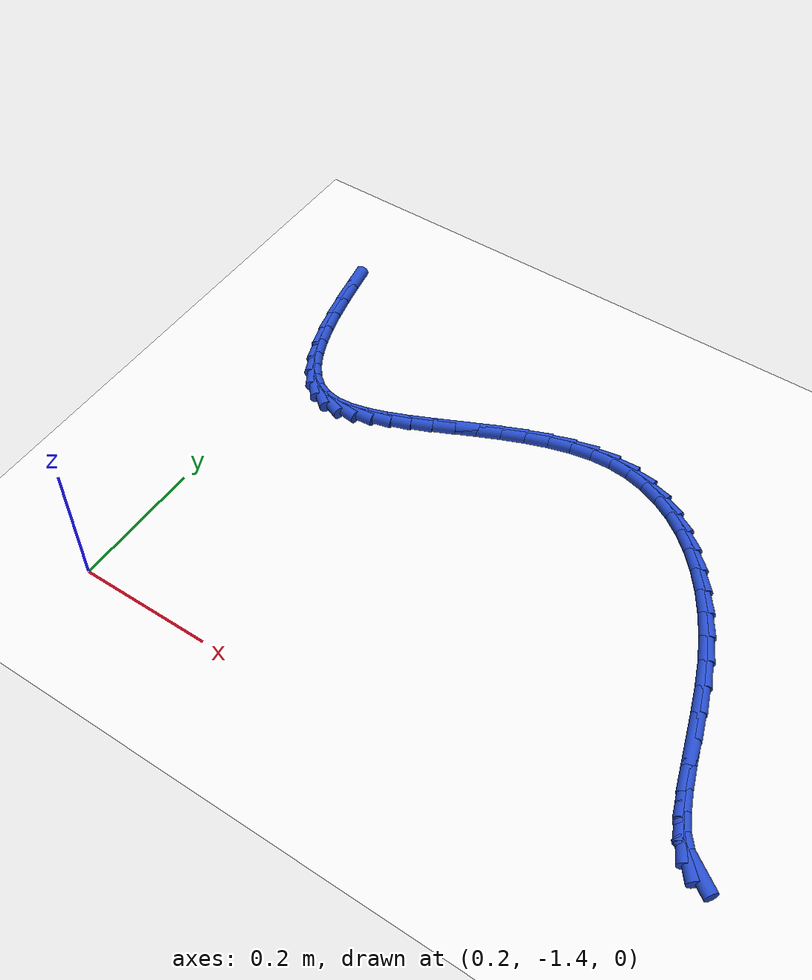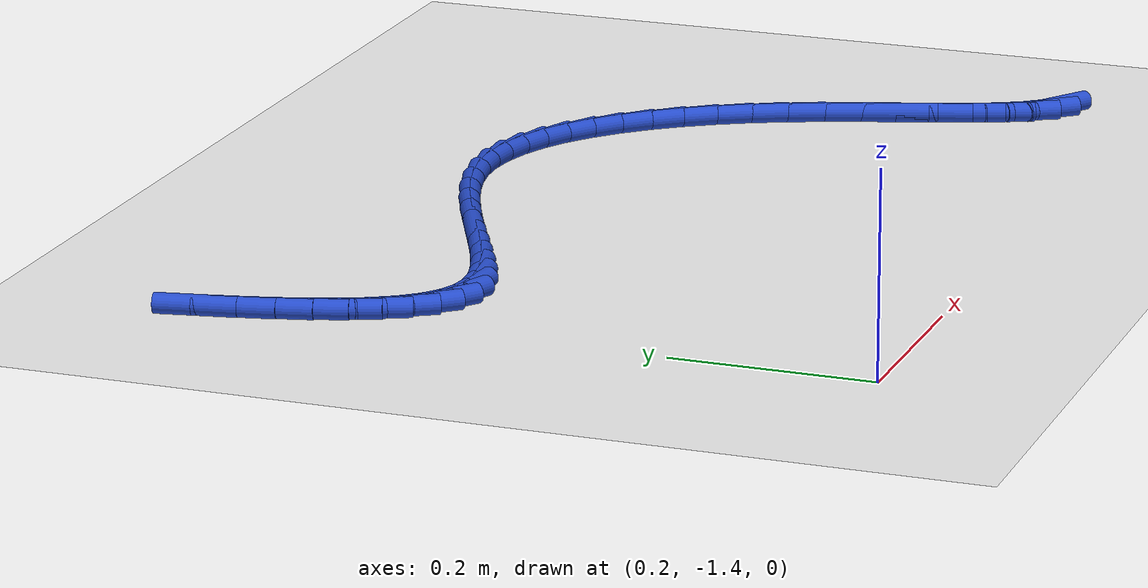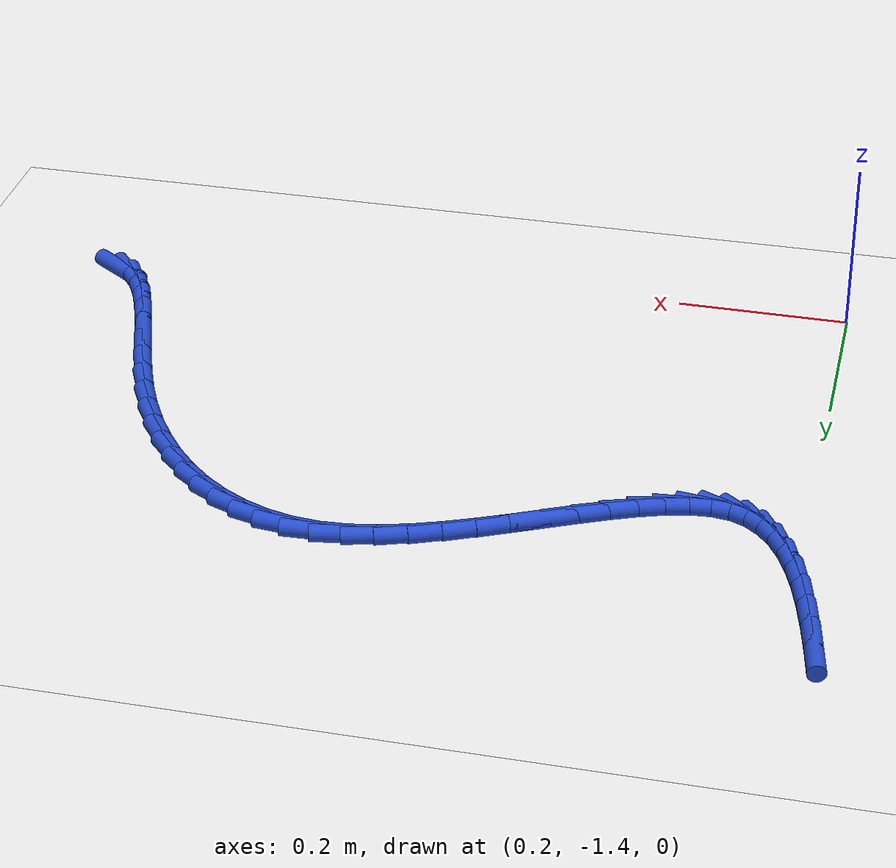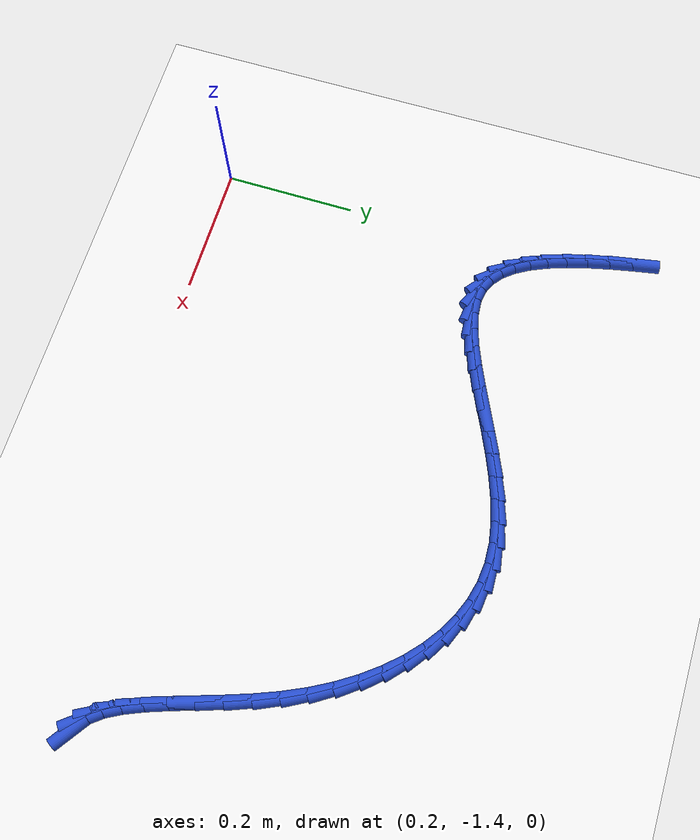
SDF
<sdf version="1.6">
 <world name="default">
  <model name="ground_plane">
   <static>1</static>
   <link name="link">
    <collision name="collision">
     <geometry><plane><normal>0 0 1</normal><size>100 100</size></plane></geometry>
     <surface><friction><ode><mu>100</mu><mu2>50</mu2></ode></friction></surface>
    </collision>
    <visual name="visual">
     <cast_shadows>0</cast_shadows>
     <geometry><plane><normal>0 0 1</normal><size>100 100</size></plane></geometry>
     <material>
      <script><uri>file://media/materials/scripts/gazebo.material</uri><name>Gazebo/WhiteGlow</name></script>
     </material>
    </visual>
   </link>
  </model>
  <model name="line">
   <link name="link_194">
    <pose>1.0776410572654145 -1.3210389456832108 0.01 0 1.57 -0.6045928374777294</pose>
    <collision name="collision">
     <geometry><cylinder><radius>0.01</radius><length>0.08</length></cylinder></geometry>
    </collision>
    <visual name="visual">
     <material>
      <script><name>Gazebo/Blue</name><uri>file://media/materials/scripts/gazebo.material</uri></script>
     </material>
     <geometry><cylinder><radius>0.01</radius><length>0.08</length></cylinder></geometry>
    </visual>
   </link>
   <link name="link_195">
    <pose>1.0616847650866093 -1.3100147339662003 0.01 0 1.57 -0.9021058465733437</pose>
    <collision name="collision">
     <geometry><cylinder><radius>0.01</radius><length>0.08</length></cylinder></geometry>
    </collision>
    <visual name="visual">
     <material>
      <script><name>Gazebo/Blue</name><uri>file://media/materials/scripts/gazebo.material</uri></script>
     </material>
     <geometry><cylinder><radius>0.01</radius><length>0.08</length></cylinder></geometry>
    </visual>
   </link>
   <link name="link_196">
    <pose>1.04756136291948 -1.29213983621966 0.01 0 1.57 -1.0765238740440688</pose>
    <collision name="collision">
     <geometry><cylinder><radius>0.01</radius><length>0.08</length></cylinder></geometry>
    </collision>
    <visual name="visual">
     <material>
      <script><name>Gazebo/Blue</name><uri>file://media/materials/scripts/gazebo.material</uri></script>
     </material>
     <geometry><cylinder><radius>0.01</radius><length>0.08</length></cylinder></geometry>
    </visual>
   </link>
   <link name="link_197">
    <pose>1.0348079345876469 -1.2684736719574772 0.01 0 1.57 -1.1755892360383697</pose>
    <collision name="collision">
     <geometry><cylinder><radius>0.01</radius><length>0.08</length></cylinder></geometry>
    </collision>
    <visual name="visual">
     <material>
      <script><name>Gazebo/Blue</name><uri>file://media/materials/scripts/gazebo.material</uri></script>
     </material>
     <geometry><cylinder><radius>0.01</radius><length>0.08</length></cylinder></geometry>
    </visual>
   </link>
   <link name="link_198">
    <pose>1.0229615639147311 -1.2400756606935397 0.01 0 1.57 -1.2291972647721858</pose>
    <collision name="collision">
     <geometry><cylinder><radius>0.01</radius><length>0.08</length></cylinder></geometry>
    </collision>
    <visual name="visual">
     <material>
      <script><name>Gazebo/Blue</name><uri>file://media/materials/scripts/gazebo.material</uri></script>
     </material>
     <geometry><cylinder><radius>0.01</radius><length>0.08</length></cylinder></geometry>
    </visual>
   </link>
   <link name="link_199">
    <pose>1.0115593347243528 -1.2080052219417348 0.01 0 1.57 -1.2526867901644954</pose>
    <collision name="collision">
     <geometry><cylinder><radius>0.01</radius><length>0.08</length></cylinder></geometry>
    </collision>
    <visual name="visual">
     <material>
      <script><name>Gazebo/Blue</name><uri>file://media/materials/scripts/gazebo.material</uri></script>
     </material>
     <geometry><cylinder><radius>0.01</radius><length>0.08</length></cylinder></geometry>
    </visual>
   </link>
   <link name="link_200">
    <pose>1.0001383308401328 -1.1733217752159493 0.01 0 1.57 -1.2534312368326777</pose>
    <collision name="collision">
     <geometry><cylinder><radius>0.01</radius><length>0.08</length></cylinder></geometry>
    </collision>
    <visual name="visual">
     <material>
      <script><name>Gazebo/Blue</name><uri>file://media/materials/scripts/gazebo.material</uri></script>
     </material>
     <geometry><cylinder><radius>0.01</radius><length>0.08</length></cylinder></geometry>
    </visual>
   </link>
   <link name="link_201">
    <pose>0.9882356360856913 -1.1370847400300705 0.01 0 1.57 -1.2343305812242449</pose>
    <collision name="collision">
     <geometry><cylinder><radius>0.01</radius><length>0.08</length></cylinder></geometry>
    </collision>
    <visual name="visual">
     <material>
      <script><name>Gazebo/Blue</name><uri>file://media/materials/scripts/gazebo.material</uri></script>
     </material>
     <geometry><cylinder><radius>0.01</radius><length>0.08</length></cylinder></geometry>
    </visual>
   </link>
   <link name="link_202">
    <pose>0.9753883342846492 -1.1003535358979863 0.01 0 1.57 -1.1953428585759003</pose>
    <collision name="collision">
     <geometry><cylinder><radius>0.01</radius><length>0.08</length></cylinder></geometry>
    </collision>
    <visual name="visual">
     <material>
      <script><name>Gazebo/Blue</name><uri>file://media/materials/scripts/gazebo.material</uri></script>
     </material>
     <geometry><cylinder><radius>0.01</radius><length>0.08</length></cylinder></geometry>
    </visual>
   </link>
   <link name="link_203">
    <pose>0.9611335092606271 -1.064187582333584 0.01 0 1.57 -1.1361519987987265</pose>
    <collision name="collision">
     <geometry><cylinder><radius>0.01</radius><length>0.08</length></cylinder></geometry>
    </collision>
    <visual name="visual">
     <material>
      <script><name>Gazebo/Blue</name><uri>file://media/materials/scripts/gazebo.material</uri></script>
     </material>
     <geometry><cylinder><radius>0.01</radius><length>0.08</length></cylinder></geometry>
    </visual>
   </link>
   <link name="link_204">
    <pose>0.9450616659687762 -1.0295689581912195 0.01 0 1.57 -1.0677367182058393</pose>
    <collision name="collision">
     <geometry><cylinder><radius>0.01</radius><length>0.08</length></cylinder></geometry>
    </collision>
    <visual name="visual">
     <material>
      <script><name>Gazebo/Blue</name><uri>file://media/materials/scripts/gazebo.material</uri></script>
     </material>
     <geometry><cylinder><radius>0.01</radius><length>0.08</length></cylinder></geometry>
    </visual>
   </link>
   <link name="link_205">
    <pose>0.9271196581594063 -0.9969638369138577 0.01 0 1.57 -0.9944038287270804</pose>
    <collision name="collision">
     <geometry><cylinder><radius>0.01</radius><length>0.08</length></cylinder></geometry>
    </collision>
    <visual name="visual">
     <material>
      <script><name>Gazebo/Blue</name><uri>file://media/materials/scripts/gazebo.material</uri></script>
     </material>
     <geometry><cylinder><radius>0.01</radius><length>0.08</length></cylinder></geometry>
    </visual>
   </link>
   <link name="link_206">
    <pose>0.9074001550894643 -0.9666272869541743 0.01 0 1.57 -0.914900640766993</pose>
    <collision name="collision">
     <geometry><cylinder><radius>0.01</radius><length>0.08</length></cylinder></geometry>
    </collision>
    <visual name="visual">
     <material>
      <script><name>Gazebo/Blue</name><uri>file://media/materials/scripts/gazebo.material</uri></script>
     </material>
     <geometry><cylinder><radius>0.01</radius><length>0.08</length></cylinder></geometry>
    </visual>
   </link>
   <link name="link_207">
    <pose>0.8859962634149912 -0.938813743518534 0.01 0 1.57 -0.8278642663976987</pose>
    <collision name="collision">
     <geometry><cylinder><radius>0.01</radius><length>0.08</length></cylinder></geometry>
    </collision>
    <visual name="visual">
     <material>
      <script><name>Gazebo/Blue</name><uri>file://media/materials/scripts/gazebo.material</uri></script>
     </material>
     <geometry><cylinder><radius>0.01</radius><length>0.08</length></cylinder></geometry>
    </visual>
   </link>
   <link name="link_208">
    <pose>0.8630010897920294 -0.9137776418133022 0.01 0 1.57 -0.7319168669424123</pose>
    <collision name="collision">
     <geometry><cylinder><radius>0.01</radius><length>0.08</length></cylinder></geometry>
    </collision>
    <visual name="visual">
     <material>
      <script><name>Gazebo/Blue</name><uri>file://media/materials/scripts/gazebo.material</uri></script>
     </material>
     <geometry><cylinder><radius>0.01</radius><length>0.08</length></cylinder></geometry>
    </visual>
   </link>
   <link name="link_209">
    <pose>0.8385077408766207 -0.8917734170448437 0.01 0 1.57 -0.625827531532449</pose>
    <collision name="collision">
     <geometry><cylinder><radius>0.01</radius><length>0.08</length></cylinder></geometry>
    </collision>
    <visual name="visual">
     <material>
      <script><name>Gazebo/Blue</name><uri>file://media/materials/scripts/gazebo.material</uri></script>
     </material>
     <geometry><cylinder><radius>0.01</radius><length>0.08</length></cylinder></geometry>
    </visual>
   </link>
   <link name="link_210">
    <pose>0.8126093233248071 -0.8730555044195242 0.01 0 1.57 -0.5087899770086035</pose>
    <collision name="collision">
     <geometry><cylinder><radius>0.01</radius><length>0.08</length></cylinder></geometry>
    </collision>
    <visual name="visual">
     <material>
      <script><name>Gazebo/Blue</name><uri>file://media/materials/scripts/gazebo.material</uri></script>
     </material>
     <geometry><cylinder><radius>0.01</radius><length>0.08</length></cylinder></geometry>
    </visual>
   </link>
   <link name="link_211">
    <pose>0.7853989437926301 -0.8578783391437081 0.01 0 1.57 -0.3808183281249395</pose>
    <collision name="collision">
     <geometry><cylinder><radius>0.01</radius><length>0.08</length></cylinder></geometry>
    </collision>
    <visual name="visual">
     <material>
      <script><name>Gazebo/Blue</name><uri>file://media/materials/scripts/gazebo.material</uri></script>
     </material>
     <geometry><cylinder><radius>0.01</radius><length>0.08</length></cylinder></geometry>
    </visual>
   </link>
   <link name="link_212">
    <pose>0.7569697089361319 -0.8464963564237611 0.01 0 1.57 -0.24318241205804203</pose>
    <collision name="collision">
     <geometry><cylinder><radius>0.01</radius><length>0.08</length></cylinder></geometry>
    </collision>
    <visual name="visual">
     <material>
      <script><name>Gazebo/Blue</name><uri>file://media/materials/scripts/gazebo.material</uri></script>
     </material>
     <geometry><cylinder><radius>0.01</radius><length>0.08</length></cylinder></geometry>
    </visual>
   </link>
   <link name="link_213">
    <pose>0.7274147254113532 -0.8391639914660479 0.01 0 1.57 -0.09868289320035925</pose>
    <collision name="collision">
     <geometry><cylinder><radius>0.01</radius><length>0.08</length></cylinder></geometry>
    </collision>
    <visual name="visual">
     <material>
      <script><name>Gazebo/Blue</name><uri>file://media/materials/scripts/gazebo.material</uri></script>
     </material>
     <geometry><cylinder><radius>0.01</radius><length>0.08</length></cylinder></geometry>
    </visual>
   </link>
   <link name="link_214">
    <pose>0.6968270998743379 -0.8361356794769341 0.01 0 1.57 0.04750460595899502</pose>
    <collision name="collision">
     <geometry><cylinder><radius>0.01</radius><length>0.08</length></cylinder></geometry>
    </collision>
    <visual name="visual">
     <material>
      <script><name>Gazebo/Blue</name><uri>file://media/materials/scripts/gazebo.material</uri></script>
     </material>
     <geometry><cylinder><radius>0.01</radius><length>0.08</length></cylinder></geometry>
    </visual>
   </link>
   <link name="link_215">
    <pose>0.6653049702427568 -0.8376342532646556 0.01 0 1.57 0.17532559752443133</pose>
    <collision name="collision">
     <geometry><cylinder><radius>0.01</radius><length>0.08</length></cylinder></geometry>
    </collision>
    <visual name="visual">
     <material>
      <script><name>Gazebo/Blue</name><uri>file://media/materials/scripts/gazebo.material</uri></script>
     </material>
     <geometry><cylinder><radius>0.01</radius><length>0.08</length></cylinder></geometry>
    </visual>
   </link>
   <link name="link_216">
    <pose>0.6330310354284249 -0.8433514004894307 0.01 0 1.57 0.2732948466155432</pose>
    <collision name="collision">
     <geometry><cylinder><radius>0.01</radius><length>0.08</length></cylinder></geometry>
    </collision>
    <visual name="visual">
     <material>
      <script><name>Gazebo/Blue</name><uri>file://media/materials/scripts/gazebo.material</uri></script>
     </material>
     <geometry><cylinder><radius>0.01</radius><length>0.08</length></cylinder></geometry>
    </visual>
   </link>
   <link name="link_217">
    <pose>0.6002581873929164 -0.852537911703042 0.01 0 1.57 0.34575081632501126</pose>
    <collision name="collision">
     <geometry><cylinder><radius>0.01</radius><length>0.08</length></cylinder></geometry>
    </collision>
    <visual name="visual">
     <material>
      <script><name>Gazebo/Blue</name><uri>file://media/materials/scripts/gazebo.material</uri></script>
     </material>
     <geometry><cylinder><radius>0.01</radius><length>0.08</length></cylinder></geometry>
    </visual>
   </link>
   <link name="link_218">
    <pose>0.5672414444951575 -0.8644312211143459 0.01 0 1.57 0.39698863042230065</pose>
    <collision name="collision">
     <geometry><cylinder><radius>0.01</radius><length>0.08</length></cylinder></geometry>
    </collision>
    <visual name="visual">
     <material>
      <script><name>Gazebo/Blue</name><uri>file://media/materials/scripts/gazebo.material</uri></script>
     </material>
     <geometry><cylinder><radius>0.01</radius><length>0.08</length></cylinder></geometry>
    </visual>
   </link>
   <link name="link_219">
    <pose>0.5342358250940737 -0.8782687629321971 0.01 0 1.57 0.4301058790516141</pose>
    <collision name="collision">
     <geometry><cylinder><radius>0.01</radius><length>0.08</length></cylinder></geometry>
    </collision>
    <visual name="visual">
     <material>
      <script><name>Gazebo/Blue</name><uri>file://media/materials/scripts/gazebo.material</uri></script>
     </material>
     <geometry><cylinder><radius>0.01</radius><length>0.08</length></cylinder></geometry>
    </visual>
   </link>
   <link name="link_220">
    <pose>0.5014963475485905 -0.8932879713654528 0.01 0 1.57 0.4468516955128071</pose>
    <collision name="collision">
     <geometry><cylinder><radius>0.01</radius><length>0.08</length></cylinder></geometry>
    </collision>
    <visual name="visual">
     <material>
      <script><name>Gazebo/Blue</name><uri>file://media/materials/scripts/gazebo.material</uri></script>
     </material>
     <geometry><cylinder><radius>0.01</radius><length>0.08</length></cylinder></geometry>
    </visual>
   </link>
   <link name="link_221">
    <pose>0.4692780302176354 -0.9087262806229672 0.01 0 1.57 0.44758763721667144</pose>
    <collision name="collision">
     <geometry><cylinder><radius>0.01</radius><length>0.08</length></cylinder></geometry>
    </collision>
    <visual name="visual">
     <material>
      <script><name>Gazebo/Blue</name><uri>file://media/materials/scripts/gazebo.material</uri></script>
     </material>
     <geometry><cylinder><radius>0.01</radius><length>0.08</length></cylinder></geometry>
    </visual>
   </link>
   <link name="link_222">
    <pose>0.43783589146013335 -0.9238211249135969 0.01 0 1.57 0.43113277784160137</pose>
    <collision name="collision">
     <geometry><cylinder><radius>0.01</radius><length>0.08</length></cylinder></geometry>
    </collision>
    <visual name="visual">
     <material>
      <script><name>Gazebo/Blue</name><uri>file://media/materials/scripts/gazebo.material</uri></script>
     </material>
     <geometry><cylinder><radius>0.01</radius><length>0.08</length></cylinder></geometry>
    </visual>
   </link>
   <link name="link_223">
    <pose>0.4074249496350102 -0.9378099384461971 0.01 0 1.57 0.3943496912045608</pose>
    <collision name="collision">
     <geometry><cylinder><radius>0.01</radius><length>0.08</length></cylinder></geometry>
    </collision>
    <visual name="visual">
     <material>
      <script><name>Gazebo/Blue</name><uri>file://media/materials/scripts/gazebo.material</uri></script>
     </material>
     <geometry><cylinder><radius>0.01</radius><length>0.08</length></cylinder></geometry>
    </visual>
   </link>
   <link name="link_224">
    <pose>0.37830022310119193 -0.9499301554296243 0.01 0 1.57 0.3313304382197133</pose>
    <collision name="collision">
     <geometry><cylinder><radius>0.01</radius><length>0.08</length></cylinder></geometry>
    </collision>
    <visual name="visual">
     <material>
      <script><name>Gazebo/Blue</name><uri>file://media/materials/scripts/gazebo.material</uri></script>
     </material>
     <geometry><cylinder><radius>0.01</radius><length>0.08</length></cylinder></geometry>
    </visual>
   </link>
   <link name="link_225">
    <pose>0.3507167302176047 -0.959419210072734 0.01 0 1.57 0.23210973226683065</pose>
    <collision name="collision">
     <geometry><cylinder><radius>0.01</radius><length>0.08</length></cylinder></geometry>
    </collision>
    <visual name="visual">
     <material>
      <script><name>Gazebo/Blue</name><uri>file://media/materials/scripts/gazebo.material</uri></script>
     </material>
     <geometry><cylinder><radius>0.01</radius><length>0.08</length></cylinder></geometry>
    </visual>
   </link>
   <link name="link_226">
    <pose>0.32492948934317395 -0.9655145365843817 0.01 0 1.57 0.08151073386937299</pose>
    <collision name="collision">
     <geometry><cylinder><radius>0.01</radius><length>0.08</length></cylinder></geometry>
    </collision>
    <visual name="visual">
     <material>
      <script><name>Gazebo/Blue</name><uri>file://media/materials/scripts/gazebo.material</uri></script>
     </material>
     <geometry><cylinder><radius>0.01</radius><length>0.08</length></cylinder></geometry>
    </visual>
   </link>
   <link name="link_227">
    <pose>0.3011935188368258 -0.9674535691734234 0.01 0 1.57 -0.13809903185672978</pose>
    <collision name="collision">
     <geometry><cylinder><radius>0.01</radius><length>0.08</length></cylinder></geometry>
    </collision>
    <visual name="visual">
     <material>
      <script><name>Gazebo/Blue</name><uri>file://media/materials/scripts/gazebo.material</uri></script>
     </material>
     <geometry><cylinder><radius>0.01</radius><length>0.08</length></cylinder></geometry>
    </visual>
   </link>
   <link name="link_228">
    <pose>0.2797632970937359 -0.9644751178254892 0.01 0 1.57 -0.4127640457152098</pose>
    <collision name="collision">
     <geometry><cylinder><radius>0.01</radius><length>0.08</length></cylinder></geometry>
    </collision>
    <visual name="visual">
     <material>
      <script><name>Gazebo/Blue</name><uri>file://media/materials/scripts/gazebo.material</uri></script>
     </material>
     <geometry><cylinder><radius>0.01</radius><length>0.08</length></cylinder></geometry>
    </visual>
   </link>
   <link name="link_229">
    <pose>0.26076149589407865 -0.9561538233659111 0.01 0 1.57 -0.671611609815156</pose>
    <collision name="collision">
     <geometry><cylinder><radius>0.01</radius><length>0.08</length></cylinder></geometry>
    </collision>
    <visual name="visual">
     <material>
      <script><name>Gazebo/Blue</name><uri>file://media/materials/scripts/gazebo.material</uri></script>
     </material>
     <geometry><cylinder><radius>0.01</radius><length>0.08</length></cylinder></geometry>
    </visual>
   </link>
   <link name="link_230">
    <pose>0.24400770279321704 -0.9428365566762973 0.01 0 1.57 -0.8811428660098813</pose>
    <collision name="collision">
     <geometry><cylinder><radius>0.01</radius><length>0.08</length></cylinder></geometry>
    </collision>
    <visual name="visual">
     <material>
      <script><name>Gazebo/Blue</name><uri>file://media/materials/scripts/gazebo.material</uri></script>
     </material>
     <geometry><cylinder><radius>0.01</radius><length>0.08</length></cylinder></geometry>
    </visual>
   </link>
   <link name="link_231">
    <pose>0.2292790629388411 -0.9249783278952045 0.01 0 1.57 -1.0384630845007938</pose>
    <collision name="collision">
     <geometry><cylinder><radius>0.01</radius><length>0.08</length></cylinder></geometry>
    </collision>
    <visual name="visual">
     <material>
      <script><name>Gazebo/Blue</name><uri>file://media/materials/scripts/gazebo.material</uri></script>
     </material>
     <geometry><cylinder><radius>0.01</radius><length>0.08</length></cylinder></geometry>
    </visual>
   </link>
   <link name="link_232">
    <pose>0.2163527214786414 -0.9030341471611899 0.01 0 1.57 -1.1532194297588132</pose>
    <collision name="collision">
     <geometry><cylinder><radius>0.01</radius><length>0.08</length></cylinder></geometry>
    </collision>
    <visual name="visual">
     <material>
      <script><name>Gazebo/Blue</name><uri>file://media/materials/scripts/gazebo.material</uri></script>
     </material>
     <geometry><cylinder><radius>0.01</radius><length>0.08</length></cylinder></geometry>
    </visual>
   </link>
   <link name="link_233">
    <pose>0.2050058235603087 -0.8774590246128096 0.01 0 1.57 -1.236371581420239</pose>
    <collision name="collision">
     <geometry><cylinder><radius>0.01</radius><length>0.08</length></cylinder></geometry>
    </collision>
    <visual name="visual">
     <material>
      <script><name>Gazebo/Blue</name><uri>file://media/materials/scripts/gazebo.material</uri></script>
     </material>
     <geometry><cylinder><radius>0.01</radius><length>0.08</length></cylinder></geometry>
    </visual>
   </link>
   <link name="link_234">
    <pose>0.19501551433153358 -0.8487079703886207 0.01 0 1.57 -1.2964792356138526</pose>
    <collision name="collision">
     <geometry><cylinder><radius>0.01</radius><length>0.08</length></cylinder></geometry>
    </collision>
    <visual name="visual">
     <material>
      <script><name>Gazebo/Blue</name><uri>file://media/materials/scripts/gazebo.material</uri></script>
     </material>
     <geometry><cylinder><radius>0.01</radius><length>0.08</length></cylinder></geometry>
    </visual>
   </link>
   <link name="link_235">
    <pose>0.18615893894000665 -0.8172359946271801 0.01 0 1.57 -1.3394986800703779</pose>
    <collision name="collision">
     <geometry><cylinder><radius>0.01</radius><length>0.08</length></cylinder></geometry>
    </collision>
    <visual name="visual">
     <material>
      <script><name>Gazebo/Blue</name><uri>file://media/materials/scripts/gazebo.material</uri></script>
     </material>
     <geometry><cylinder><radius>0.01</radius><length>0.08</length></cylinder></geometry>
    </visual>
   </link>
   <link name="link_236">
    <pose>0.17821324253341844 -0.783498107467044 0.01 0 1.57 -1.3694031315066166</pose>
    <collision name="collision">
     <geometry><cylinder><radius>0.01</radius><length>0.08</length></cylinder></geometry>
    </collision>
    <visual name="visual">
     <material>
      <script><name>Gazebo/Blue</name><uri>file://media/materials/scripts/gazebo.material</uri></script>
     </material>
     <geometry><cylinder><radius>0.01</radius><length>0.08</length></cylinder></geometry>
    </visual>
   </link>
   <link name="link_237">
    <pose>0.17095557025945993 -0.7479493190467705 0.01 0 1.57 -1.388778122694204</pose>
    <collision name="collision">
     <geometry><cylinder><radius>0.01</radius><length>0.08</length></cylinder></geometry>
    </collision>
    <visual name="visual">
     <material>
      <script><name>Gazebo/Blue</name><uri>file://media/materials/scripts/gazebo.material</uri></script>
     </material>
     <geometry><cylinder><radius>0.01</radius><length>0.08</length></cylinder></geometry>
    </visual>
   </link>
  </model>
 </world>
</sdf>
